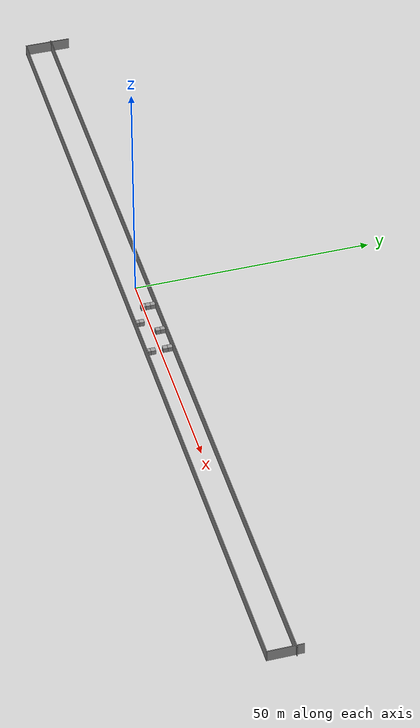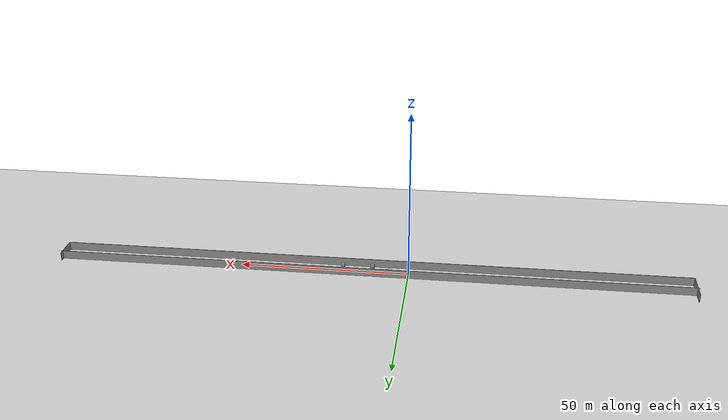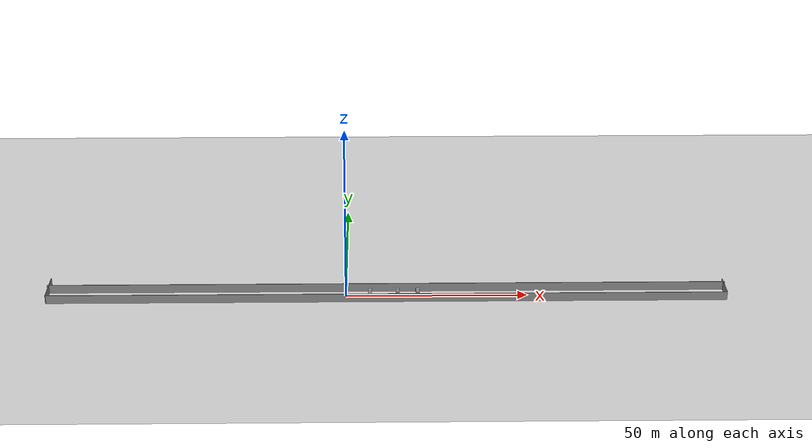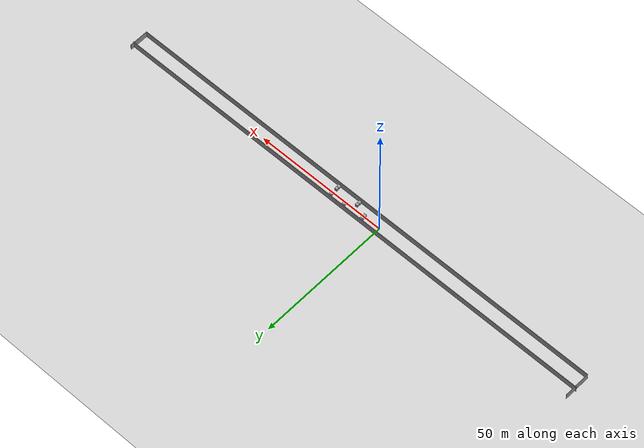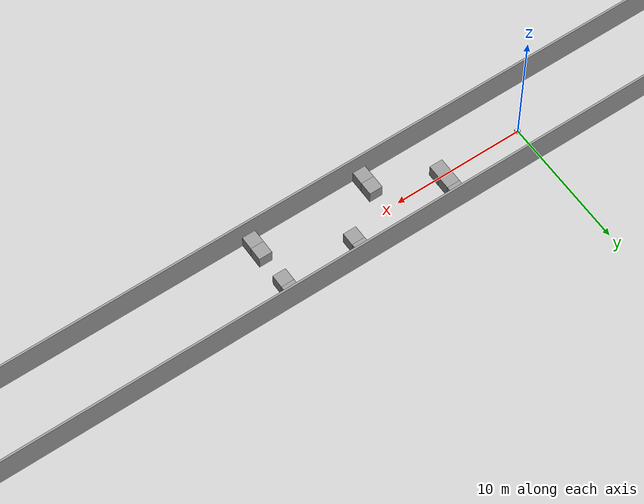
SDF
<sdf version="1.7">
 <world name="default">
  <light name="sun" type="directional">
   <pose>0 0 10 0 -0 0</pose>
   <diffuse>0.8 0.8 0.8 1</diffuse>
   <specular>0.2 0.2 0.2 1</specular>
   <attenuation>
    <range>1000</range>
    <constant>0.9</constant>
    <linear>0.01</linear>
    <quadratic>0.001</quadratic>
   </attenuation>
   <direction>-0.5 0.1 -0.9</direction>
   <spot><inner_angle>0</inner_angle><outer_angle>0</outer_angle><falloff>0</falloff></spot>
  </light>
  <model name="ground_plane">
   <static>1</static>
   <link name="link">
    <collision name="collision">
     <geometry><plane><normal>0 0 1</normal><size>100 100</size></plane></geometry>
     <surface><friction><ode><mu>100</mu><mu2>50</mu2></ode></friction></surface>
    </collision>
    <visual name="visual">
     <cast_shadows>0</cast_shadows>
     <geometry><plane><normal>0 0 1</normal><size>100 100</size></plane></geometry>
     <material>
      <script><uri>file://media/materials/scripts/gazebo.material</uri><name>Gazebo/Grey</name></script>
     </material>
    </visual>
   </link>
  </model>
  <gravity>0 0 -9.8</gravity>
  <magnetic_field>6e-06 2.3e-05 -4.2e-05</magnetic_field>
  <atmosphere type="adiabatic"/>
  <physics type="ode">
   <max_step_size>0.001</max_step_size>
   <real_time_factor>1</real_time_factor>
   <real_time_update_rate>1000</real_time_update_rate>
  </physics>
  <scene><ambient>0.4 0.4 0.4 1</ambient><background>0.7 0.7 0.7 1</background><shadows>1</shadows></scene>
  <audio><device>default</device></audio>
  <spherical_coordinates>
   <surface_model>EARTH_WGS84</surface_model>
   <latitude_deg>0</latitude_deg>
   <longitude_deg>0</longitude_deg>
   <elevation>0</elevation>
   <heading_deg>0</heading_deg>
  </spherical_coordinates>
  <model name="Untitled">
   <pose>11.1499 1.59567 0 0 -0 0</pose>
   <link name="Wall_10">
    <collision name="Wall_10_Collision">
     <geometry><box><size>7.25 0.15 2.5</size></box></geometry>
     <pose>0 0 1.25 0 -0 0</pose>
    </collision>
    <visual name="Wall_10_Visual">
     <pose>0 0 1.25 0 -0 0</pose>
     <geometry><box><size>7.25 0.15 2.5</size></box></geometry>
     <material>
      <script><uri>file://media/materials/scripts/gazebo.material</uri><name>Gazebo/Grey</name></script>
      <ambient>1 1 1 1</ambient>
     </material>
     <meta><layer>0</layer></meta>
    </visual>
    <pose>93.6971 -1.25 0 0 -0 -1.5708</pose>
   </link>
   <link name="Wall_11">
    <collision name="Wall_11_Collision">
     <geometry><box><size>187.5 0.15 2.5</size></box></geometry>
     <pose>0 0 1.25 0 -0 0</pose>
    </collision>
    <visual name="Wall_11_Visual">
     <pose>0 0 1.25 0 -0 0</pose>
     <geometry><box><size>187.5 0.15 2.5</size></box></geometry>
     <material>
      <script><uri>file://media/materials/scripts/gazebo.material</uri><name>Gazebo/Grey</name></script>
      <ambient>1 1 1 1</ambient>
     </material>
     <meta><layer>0</layer></meta>
    </visual>
    <pose>0.022125 -4.8 0 0 -0 3.14159</pose>
   </link>
   <link name="Wall_12">
    <collision name="Wall_12_Collision">
     <geometry><box><size>9.75 0.15 2.5</size></box></geometry>
     <pose>0 0 1.25 0 -0 0</pose>
    </collision>
    <visual name="Wall_12_Visual">
     <pose>0 0 1.25 0 -0 0</pose>
     <geometry><box><size>9.75 0.15 2.5</size></box></geometry>
     <material>
      <script><uri>file://media/materials/scripts/gazebo.material</uri><name>Gazebo/Grey</name></script>
      <ambient>1 1 1 1</ambient>
     </material>
     <meta><layer>0</layer></meta>
    </visual>
    <pose>-93.6529 -0 0 0 -0 1.5708</pose>
   </link>
   <link name="Wall_5">
    <collision name="Wall_5_Collision">
     <geometry><box><size>188.25 0.15 2.5</size></box></geometry>
     <pose>0 0 1.25 0 -0 0</pose>
    </collision>
    <visual name="Wall_5_Visual">
     <pose>0 0 1.25 0 -0 0</pose>
     <geometry><box><size>188.25 0.15 2.5</size></box></geometry>
     <material>
      <script><uri>file://media/materials/scripts/gazebo.material</uri><name>Gazebo/Grey</name></script>
      <ambient>1 1 1 1</ambient>
     </material>
     <meta><layer>0</layer></meta>
    </visual>
    <pose>-3e-06 0.87141 0 0 -0 0</pose>
   </link>
   <static>1</static>
  </model>
  <model name="unit_box">
   <pose>19.766 -2.62872 0.499995 -0 1e-05 -0.001262</pose>
   <link name="link">
    <inertial>
     <mass>1</mass>
     <inertia>
      <ixx>0.166667</ixx>
      <ixy>0</ixy>
      <ixz>0</ixz>
      <iyy>0.166667</iyy>
      <iyz>0</iyz>
      <izz>0.166667</izz>
     </inertia>
    </inertial>
    <collision name="collision"><geometry><box><size>1 1 1</size></box></geometry></collision>
    <visual name="visual">
     <geometry><box><size>1 1 1</size></box></geometry>
     <material>
      <script><name>Gazebo/Grey</name><uri>file://media/materials/scripts/gazebo.material</uri></script>
     </material>
    </visual>
   </link>
  </model>
  <model name="unit_box_0">
   <pose>19.7667 -1.62868 0.499995 0 -1e-05 -0.001279</pose>
   <link name="link">
    <inertial>
     <mass>1</mass>
     <inertia>
      <ixx>0.166667</ixx>
      <ixy>0</ixy>
      <ixz>0</ixz>
      <iyy>0.166667</iyy>
      <iyz>0</iyz>
      <izz>0.166667</izz>
     </inertia>
    </inertial>
    <collision name="collision"><geometry><box><size>1 1 1</size></box></geometry></collision>
    <visual name="visual">
     <geometry><box><size>1 1 1</size></box></geometry>
     <material>
      <script><name>Gazebo/Grey</name><uri>file://media/materials/scripts/gazebo.material</uri></script>
     </material>
    </visual>
   </link>
  </model>
  <model name="unit_box_1">
   <pose>19.7451 1.89201 0.499995 -1e-05 -0 3.8e-05</pose>
   <link name="link">
    <inertial>
     <mass>1</mass>
     <inertia>
      <ixx>0.166667</ixx>
      <ixy>0</ixy>
      <ixz>0</ixz>
      <iyy>0.166667</iyy>
      <iyz>0</iyz>
      <izz>0.166667</izz>
     </inertia>
    </inertial>
    <collision name="collision"><geometry><box><size>1 1 1</size></box></geometry></collision>
    <visual name="visual">
     <geometry><box><size>1 1 1</size></box></geometry>
     <material>
      <script><name>Gazebo/Grey</name><uri>file://media/materials/scripts/gazebo.material</uri></script>
     </material>
    </visual>
   </link>
  </model>
  <model name="unit_box_2">
   <pose>19.746 0.89192 0.499995 -0 -1e-05 4.1e-05</pose>
   <link name="link">
    <inertial>
     <mass>1</mass>
     <inertia>
      <ixx>0.166667</ixx>
      <ixy>0</ixy>
      <ixz>0</ixz>
      <iyy>0.166667</iyy>
      <iyz>0</iyz>
      <izz>0.166667</izz>
     </inertia>
    </inertial>
    <collision name="collision"><geometry><box><size>1 1 1</size></box></geometry></collision>
    <visual name="visual">
     <geometry><box><size>1 1 1</size></box></geometry>
     <material>
      <script><name>Gazebo/Grey</name><uri>file://media/materials/scripts/gazebo.material</uri></script>
     </material>
    </visual>
   </link>
  </model>
  <model name="unit_box_3">
   <pose>14.1695 1.89128 0.5 0 -0 0.001593</pose>
   <link name="link">
    <inertial>
     <mass>1</mass>
     <inertia>
      <ixx>0.166667</ixx>
      <ixy>0</ixy>
      <ixz>0</ixz>
      <iyy>0.166667</iyy>
      <iyz>0</iyz>
      <izz>0.166667</izz>
     </inertia>
    </inertial>
    <collision name="collision"><geometry><box><size>1 1 1</size></box></geometry></collision>
    <visual name="visual">
     <geometry><box><size>1 1 1</size></box></geometry>
     <material>
      <script><name>Gazebo/Grey</name><uri>file://media/materials/scripts/gazebo.material</uri></script>
     </material>
    </visual>
   </link>
  </model>
  <model name="unit_box_4">
   <pose>14.1817 0.891283 0.5 0 -0 0.00163</pose>
   <link name="link">
    <inertial>
     <mass>1</mass>
     <inertia>
      <ixx>0.166667</ixx>
      <ixy>0</ixy>
      <ixz>0</ixz>
      <iyy>0.166667</iyy>
      <iyz>0</iyz>
      <izz>0.166667</izz>
     </inertia>
    </inertial>
    <collision name="collision"><geometry><box><size>1 1 1</size></box></geometry></collision>
    <visual name="visual">
     <geometry><box><size>1 1 1</size></box></geometry>
     <material>
      <script><name>Gazebo/Grey</name><uri>file://media/materials/scripts/gazebo.material</uri></script>
     </material>
    </visual>
   </link>
  </model>
  <model name="unit_box_5">
   <pose>10.9639 -2.62933 0.5 -0 -0 -3e-06</pose>
   <link name="link">
    <inertial>
     <mass>1</mass>
     <inertia>
      <ixx>0.166667</ixx>
      <ixy>0</ixy>
      <ixz>0</ixz>
      <iyy>0.166667</iyy>
      <iyz>0</iyz>
      <izz>0.166667</izz>
     </inertia>
    </inertial>
    <collision name="collision"><geometry><box><size>1 1 1</size></box></geometry></collision>
    <visual name="visual">
     <geometry><box><size>1 1 1</size></box></geometry>
     <material>
      <script><name>Gazebo/Grey</name><uri>file://media/materials/scripts/gazebo.material</uri></script>
     </material>
    </visual>
   </link>
  </model>
  <model name="unit_box_6">
   <pose>10.9664 -1.62932 0.5 0 -0 -1e-06</pose>
   <link name="link">
    <inertial>
     <mass>1</mass>
     <inertia>
      <ixx>0.166667</ixx>
      <ixy>0</ixy>
      <ixz>0</ixz>
      <iyy>0.166667</iyy>
      <iyz>0</iyz>
      <izz>0.166667</izz>
     </inertia>
    </inertial>
    <collision name="collision"><geometry><box><size>1 1 1</size></box></geometry></collision>
    <visual name="visual">
     <geometry><box><size>1 1 1</size></box></geometry>
     <material>
      <script><name>Gazebo/Grey</name><uri>file://media/materials/scripts/gazebo.material</uri></script>
     </material>
    </visual>
   </link>
  </model>
  <model name="unit_box_7">
   <pose>6.47644 1.89105 0.5 -0 -0 -0.00203</pose>
   <link name="link">
    <inertial>
     <mass>1</mass>
     <inertia>
      <ixx>0.166667</ixx>
      <ixy>0</ixy>
      <ixz>0</ixz>
      <iyy>0.166667</iyy>
      <iyz>0</iyz>
      <izz>0.166667</izz>
     </inertia>
    </inertial>
    <collision name="collision"><geometry><box><size>1 1 1</size></box></geometry></collision>
    <visual name="visual">
     <geometry><box><size>1 1 1</size></box></geometry>
     <material>
      <script><name>Gazebo/Grey</name><uri>file://media/materials/scripts/gazebo.material</uri></script>
     </material>
    </visual>
   </link>
  </model>
  <model name="unit_box_8">
   <pose>6.47187 0.891014 0.499995 -0 1e-05 -0.002105</pose>
   <link name="link">
    <inertial>
     <mass>1</mass>
     <inertia>
      <ixx>0.166667</ixx>
      <ixy>0</ixy>
      <ixz>0</ixz>
      <iyy>0.166667</iyy>
      <iyz>0</iyz>
      <izz>0.166667</izz>
     </inertia>
    </inertial>
    <collision name="collision"><geometry><box><size>1 1 1</size></box></geometry></collision>
    <visual name="visual">
     <geometry><box><size>1 1 1</size></box></geometry>
     <material>
      <script><name>Gazebo/Grey</name><uri>file://media/materials/scripts/gazebo.material</uri></script>
     </material>
    </visual>
   </link>
  </model>
  <model name="unit_box_9">
   <pose>6.4692 -0.109056 0.499995 -0 -1e-05 -0.002103</pose>
   <link name="link">
    <inertial>
     <mass>1</mass>
     <inertia>
      <ixx>0.166667</ixx>
      <ixy>0</ixy>
      <ixz>0</ixz>
      <iyy>0.166667</iyy>
      <iyz>0</iyz>
      <izz>0.166667</izz>
     </inertia>
    </inertial>
    <collision name="collision"><geometry><box><size>1 1 1</size></box></geometry></collision>
    <visual name="visual">
     <geometry><box><size>1 1 1</size></box></geometry>
     <material>
      <script><name>Gazebo/Grey</name><uri>file://media/materials/scripts/gazebo.material</uri></script>
     </material>
    </visual>
   </link>
  </model>
  <model name="my_bot">
   <link name="base_link">
    <inertial>
     <pose>0.04875 0 0.08125 0 -0 0</pose>
     <mass>0.8</mass>
     <inertia>
      <ixx>0.00655708</ixx>
      <ixy>0</ixy>
      <ixz>0.00129375</ixz>
      <iyy>0.00786583</iyy>
      <iyz>0</iyz>
      <izz>0.00913375</izz>
     </inertia>
    </inertial>
    <collision name="base_link_fixed_joint_lump__chassis_collision">
     <pose>0.05 0 0.075 0 -0 0</pose>
     <geometry><box><size>0.3 0.3 0.15</size></box></geometry>
    </collision>
    <collision name="base_link_fixed_joint_lump__caster_wheel_collision_1">
     <pose>0.14 0 0 0 -0 0</pose>
     <geometry><sphere><radius>0.05</radius></sphere></geometry>
     <surface><friction><ode><mu>0.001</mu><mu2>0.001</mu2></ode></friction></surface>
    </collision>
    <collision name="base_link_fixed_joint_lump__laser_frame_collision_2">
     <pose>0 0 0.175 0 -0 0</pose>
     <geometry><cylinder><length>0.04</length><radius>0.05</radius></cylinder></geometry>
    </collision>
    <collision name="base_link_fixed_joint_lump__imu_link_collision_3">
     <pose>0 0 0.1 0 -0 0</pose>
     <geometry><box><size>0.05 0.05 0.05</size></box></geometry>
    </collision>
    <visual name="base_link_fixed_joint_lump__chassis_visual">
     <pose>0.05 0 0.075 0 -0 0</pose>
     <geometry><box><size>0.3 0.3 0.15</size></box></geometry>
     <material>
      <script><name>Gazebo/White</name><uri>file://media/materials/scripts/gazebo.material</uri></script>
     </material>
    </visual>
    <visual name="base_link_fixed_joint_lump__caster_wheel_visual_1">
     <pose>0.14 0 0 0 -0 0</pose>
     <geometry><sphere><radius>0.05</radius></sphere></geometry>
     <material>
      <script><name>Gazebo/Black</name><uri>file://media/materials/scripts/gazebo.material</uri></script>
     </material>
    </visual>
    <visual name="base_link_fixed_joint_lump__laser_frame_visual_2">
     <pose>0 0 0.175 0 -0 0</pose>
     <geometry><cylinder><length>0.04</length><radius>0.05</radius></cylinder></geometry>
     <material>
      <script><name>Gazebo/Red</name><uri>file://media/materials/scripts/gazebo.material</uri></script>
     </material>
    </visual>
    <visual name="base_link_fixed_joint_lump__imu_link_visual_3">
     <pose>0 0 0.1 0 -0 0</pose>
     <geometry><box><size>0.05 0.05 0.05</size></box></geometry>
    </visual>
    <sensor name="laser" type="ray">
     <visualize>0</visualize>
     <update_rate>10</update_rate>
     <ray>
      <scan>
       <horizontal>
        <samples>360</samples>
        <resolution>1</resolution>
        <min_angle>-3.14</min_angle>
        <max_angle>3.14</max_angle>
       </horizontal>
       <vertical><samples>1</samples><min_angle>0</min_angle><max_angle>0</max_angle></vertical>
      </scan>
      <range><min>0.3</min><max>12</max><resolution>0.01</resolution></range>
     </ray>
     <plugin name="laser_controller" filename="libgazebo_ros_ray_sensor.so">
      <ros><remapping>~/out:=scan</remapping></ros>
      <output_type>sensor_msgs/LaserScan</output_type>
      <frame_name>laser_frame</frame_name>
     </plugin>
     <pose>0 0 0.175 0 -0 0</pose>
    </sensor>
    <sensor name="imu_sensor" type="imu">
     <always_on>1</always_on>
     <update_rate>100</update_rate>
     <visualize>1</visualize>
     <topic>/imu</topic>
     <plugin name="imu_plugin" filename="libgazebo_ros_imu_sensor.so">
      <topicName>/imu</topicName>
      <bodyName>imu_link</bodyName>
      <updateRateHZ>10.0</updateRateHZ>
      <gaussianNoise>0.0</gaussianNoise>
      <xyzOffset>0 0 0</xyzOffset>
      <rpyOffset>0 0 0</rpyOffset>
     </plugin>
     <pose>0 0 0.1 0 -0 0</pose>
    </sensor>
   </link>
   <joint name="left_wheel_joint" type="revolute">
    <pose relative_to="base_link">0 0.175 0 -1.5708 0 0</pose>
    <parent>base_link</parent>
    <child>left_wheel</child>
    <axis>
     <xyz>0 0 1</xyz>
     <limit><lower>-1e+16</lower><upper>1e+16</upper></limit>
     <dynamics><spring_reference>0</spring_reference><spring_stiffness>0</spring_stiffness></dynamics>
    </axis>
   </joint>
   <link name="left_wheel">
    <pose relative_to="left_wheel_joint">0 0 0 0 -0 0</pose>
    <inertial>
     <mass>0.1</mass>
     <inertia>
      <ixx>7.58333e-05</ixx>
      <ixy>0</ixy>
      <ixz>0</ixz>
      <iyy>7.58333e-05</iyy>
      <iyz>0</iyz>
      <izz>0.000125</izz>
     </inertia>
    </inertial>
    <collision name="left_wheel_collision"><geometry><sphere><radius>0.05</radius></sphere></geometry></collision>
    <visual name="left_wheel_visual">
     <geometry><cylinder><length>0.04</length><radius>0.05</radius></cylinder></geometry>
     <material>
      <script><name>Gazebo/Blue</name><uri>file://media/materials/scripts/gazebo.material</uri></script>
     </material>
    </visual>
   </link>
   <joint name="right_wheel_joint" type="revolute">
    <pose relative_to="base_link">0 -0.175 0 1.5708 -0 0</pose>
    <parent>base_link</parent>
    <child>right_wheel</child>
    <axis>
     <xyz>0 0 -1</xyz>
     <limit><lower>-1e+16</lower><upper>1e+16</upper></limit>
     <dynamics><spring_reference>0</spring_reference><spring_stiffness>0</spring_stiffness></dynamics>
    </axis>
   </joint>
   <link name="right_wheel">
    <pose relative_to="right_wheel_joint">0 0 0 0 -0 0</pose>
    <inertial>
     <mass>0.1</mass>
     <inertia>
      <ixx>7.58333e-05</ixx>
      <ixy>0</ixy>
      <ixz>0</ixz>
      <iyy>7.58333e-05</iyy>
      <iyz>0</iyz>
      <izz>0.000125</izz>
     </inertia>
    </inertial>
    <collision name="right_wheel_collision">
     <geometry><sphere><radius>0.05</radius></sphere></geometry>
    </collision>
    <visual name="right_wheel_visual">
     <geometry><cylinder><length>0.04</length><radius>0.05</radius></cylinder></geometry>
     <material>
      <script><name>Gazebo/Blue</name><uri>file://media/materials/scripts/gazebo.material</uri></script>
     </material>
    </visual>
   </link>
   <static>0</static>
   <plugin name="diff_drive" filename="libgazebo_ros_diff_drive.so">
    <left_joint>left_wheel_joint</left_joint>
    <right_joint>right_wheel_joint</right_joint>
    <wheel_separation>0.35</wheel_separation>
    <wheel_diameter>0.1</wheel_diameter>
    <max_wheel_torque>200</max_wheel_torque>
    <max_wheel_acceleration>10.0</max_wheel_acceleration>
    <odometry_frame>odom</odometry_frame>
    <robot_base_frame>base_link</robot_base_frame>
    <publish_odom>1</publish_odom>
    <publish_odom_tf>1</publish_odom_tf>
    <publish_wheel_tf>1</publish_wheel_tf>
   </plugin>
   <pose>-0.000892 2.7e-05 0.049997 -1.8e-05 -2.5e-05 -0.000124</pose>
  </model>
 </world>
</sdf>
